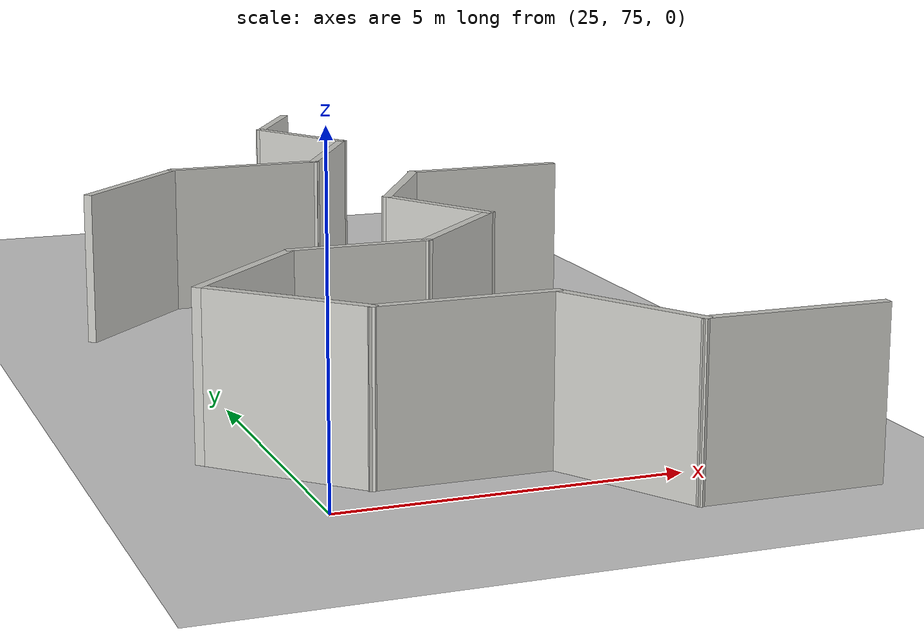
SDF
<sdf version="1.6">
 <world name="default">
  <model name="ground_plane">
   <pose>50 50 0 0 -0 0</pose>
   <static>1</static>
   <link name="link">
    <collision name="collision">
     <geometry><plane><normal>0 0 1</normal><size>100 100</size></plane></geometry>
     <surface><friction><ode><mu>100</mu><mu2>50</mu2></ode></friction></surface>
    </collision>
    <visual name="visual">
     <cast_shadows>0</cast_shadows>
     <geometry><plane><normal>0 0 1</normal><size>100 100</size></plane></geometry>
     <material>
      <script><uri>file://media/materials/scripts/gazebo.material</uri><name>Gazebo/Grey</name></script>
     </material>
    </visual>
   </link>
  </model>
  <model name="maze_1_0">
   <pose>55.5762 81.9377 0 0 -0 3.14</pose>
   <link name="Wall_151">
    <collision name="Wall_151_Collision">
     <geometry><box><size>2.75 0.15 2.5</size></box></geometry>
     <pose>0 0 1.25 0 -0 0</pose>
    </collision>
    <visual name="Wall_151_Visual">
     <pose>0 0 1.25 0 -0 0</pose>
     <geometry><box><size>2.75 0.15 2.5</size></box></geometry>
     <material>
      <script><uri>file://media/materials/scripts/gazebo.material</uri><name>Gazebo/CeilingTiled</name></script>
      <ambient>1 1 1 1</ambient>
     </material>
     <meta><layer>0</layer></meta>
    </visual>
    <pose>24.5383 -2.95315 0 0 -0 0</pose>
   </link>
   <link name="Wall_152">
    <collision name="Wall_152_Collision">
     <geometry><box><size>2.5 0.15 2.5</size></box></geometry>
     <pose>0 0 1.25 0 -0 0</pose>
    </collision>
    <visual name="Wall_152_Visual">
     <pose>0 0 1.25 0 -0 0</pose>
     <geometry><box><size>2.5 0.15 2.5</size></box></geometry>
     <material>
      <script><uri>file://media/materials/scripts/gazebo.material</uri><name>Gazebo/CeilingTiled</name></script>
      <ambient>1 1 1 1</ambient>
     </material>
     <meta><layer>0</layer></meta>
    </visual>
    <pose>26.4258 -1.93557 0 0 -0 1.0472</pose>
   </link>
   <link name="Wall_153">
    <collision name="Wall_153_Collision">
     <geometry><box><size>2.25 0.15 2.5</size></box></geometry>
     <pose>0 0 1.25 0 -0 0</pose>
    </collision>
    <visual name="Wall_153_Visual">
     <pose>0 0 1.25 0 -0 0</pose>
     <geometry><box><size>2.25 0.15 2.5</size></box></geometry>
     <material>
      <script><uri>file://media/materials/scripts/gazebo.material</uri><name>Gazebo/CeilingTiled</name></script>
      <ambient>1 1 1 1</ambient>
     </material>
     <meta><layer>0</layer></meta>
    </visual>
    <pose>26.4883 -0.00866 0 0 -0 2.0944</pose>
   </link>
   <link name="Wall_154">
    <collision name="Wall_154_Collision">
     <geometry><box><size>2.5 0.15 2.5</size></box></geometry>
     <pose>0 0 1.25 0 -0 0</pose>
    </collision>
    <visual name="Wall_154_Visual">
     <pose>0 0 1.25 0 -0 0</pose>
     <geometry><box><size>2.5 0.15 2.5</size></box></geometry>
     <material>
      <script><uri>file://media/materials/scripts/gazebo.material</uri><name>Gazebo/CeilingTiled</name></script>
      <ambient>1 1 1 1</ambient>
     </material>
     <meta><layer>0</layer></meta>
    </visual>
    <pose>26.7941 1.73152 0 0 -0 0.785398</pose>
   </link>
   <link name="Wall_155">
    <collision name="Wall_155_Collision">
     <geometry><box><size>2.25 0.15 2.5</size></box></geometry>
     <pose>0 0 1.25 0 -0 0</pose>
    </collision>
    <visual name="Wall_155_Visual">
     <pose>0 0 1.25 0 -0 0</pose>
     <geometry><box><size>2.25 0.15 2.5</size></box></geometry>
     <material>
      <script><uri>file://media/materials/scripts/gazebo.material</uri><name>Gazebo/CeilingTiled</name></script>
      <ambient>1 1 1 1</ambient>
     </material>
     <meta><layer>0</layer></meta>
    </visual>
    <pose>28.675 2.56237 0 0 -0 0</pose>
   </link>
   <link name="Wall_156">
    <collision name="Wall_156_Collision">
     <geometry><box><size>2.75 0.15 2.5</size></box></geometry>
     <pose>0 0 1.25 0 -0 0</pose>
    </collision>
    <visual name="Wall_156_Visual">
     <pose>0 0 1.25 0 -0 0</pose>
     <geometry><box><size>2.75 0.15 2.5</size></box></geometry>
     <material>
      <script><uri>file://media/materials/scripts/gazebo.material</uri><name>Gazebo/CeilingTiled</name></script>
      <ambient>1 1 1 1</ambient>
     </material>
     <meta><layer>0</layer></meta>
    </visual>
    <pose>30.6442 3.48161 0 0 -0 0.785398</pose>
   </link>
   <link name="Wall_157">
    <collision name="Wall_157_Collision">
     <geometry><box><size>2.75 0.15 2.5</size></box></geometry>
     <pose>0 0 1.25 0 -0 0</pose>
    </collision>
    <visual name="Wall_157_Visual">
     <pose>0 0 1.25 0 -0 0</pose>
     <geometry><box><size>2.75 0.15 2.5</size></box></geometry>
     <material>
      <script><uri>file://media/materials/scripts/gazebo.material</uri><name>Gazebo/CeilingTiled</name></script>
      <ambient>1 1 1 1</ambient>
     </material>
     <meta><layer>0</layer></meta>
    </visual>
    <pose>30.6442 5.32008 0 0 -0 2.35619</pose>
   </link>
   <link name="Wall_158">
    <collision name="Wall_158_Collision">
     <geometry><box><size>2.75 0.15 2.5</size></box></geometry>
     <pose>0 0 1.25 0 -0 0</pose>
    </collision>
    <visual name="Wall_158_Visual">
     <pose>0 0 1.25 0 -0 0</pose>
     <geometry><box><size>2.75 0.15 2.5</size></box></geometry>
     <material>
      <script><uri>file://media/materials/scripts/gazebo.material</uri><name>Gazebo/CeilingTiled</name></script>
      <ambient>1 1 1 1</ambient>
     </material>
     <meta><layer>0</layer></meta>
    </visual>
    <pose>28.425 6.23932 0 0 -0 3.14159</pose>
   </link>
   <link name="Wall_159">
    <collision name="Wall_159_Collision">
     <geometry><box><size>2.5 0.15 2.5</size></box></geometry>
     <pose>0 0 1.25 0 -0 0</pose>
    </collision>
    <visual name="Wall_159_Visual">
     <pose>0 0 1.25 0 -0 0</pose>
     <geometry><box><size>2.5 0.15 2.5</size></box></geometry>
     <material>
      <script><uri>file://media/materials/scripts/gazebo.material</uri><name>Gazebo/CeilingTiled</name></script>
      <ambient>1 1 1 1</ambient>
     </material>
     <meta><layer>0</layer></meta>
    </visual>
    <pose>26.5375 7.2569 0 0 -0 2.0944</pose>
   </link>
   <link name="Wall_160">
    <collision name="Wall_160_Collision">
     <geometry><box><size>2.75 0.15 2.5</size></box></geometry>
     <pose>0 0 1.25 0 -0 0</pose>
    </collision>
    <visual name="Wall_160_Visual">
     <pose>0 0 1.25 0 -0 0</pose>
     <geometry><box><size>2.75 0.15 2.5</size></box></geometry>
     <material>
      <script><uri>file://media/materials/scripts/gazebo.material</uri><name>Gazebo/CeilingTiled</name></script>
      <ambient>1 1 1 1</ambient>
     </material>
     <meta><layer>0</layer></meta>
    </visual>
    <pose>24.65 8.27448 0 0 -0 3.14159</pose>
   </link>
   <link name="Wall_190">
    <collision name="Wall_190_Collision">
     <geometry><box><size>2 0.15 2.5</size></box></geometry>
     <pose>0 0 1.25 0 -0 0</pose>
    </collision>
    <visual name="Wall_190_Visual">
     <pose>0 0 1.25 0 -0 0</pose>
     <geometry><box><size>2 0.15 2.5</size></box></geometry>
     <material>
      <script><uri>file://media/materials/scripts/gazebo.material</uri><name>Gazebo/CeilingTiled</name></script>
      <ambient>1 1 1 1</ambient>
     </material>
     <meta><layer>0</layer></meta>
    </visual>
    <pose>26.5572 -9.23801 0 0 -0 1.0472</pose>
   </link>
   <link name="Wall_191">
    <collision name="Wall_191_Collision">
     <geometry><box><size>2.25 0.15 2.5</size></box></geometry>
     <pose>0 0 1.25 0 -0 0</pose>
    </collision>
    <visual name="Wall_191_Visual">
     <pose>0 0 1.25 0 -0 0</pose>
     <geometry><box><size>2.25 0.15 2.5</size></box></geometry>
     <material>
      <script><uri>file://media/materials/scripts/gazebo.material</uri><name>Gazebo/CeilingTiled</name></script>
      <ambient>1 1 1 1</ambient>
     </material>
     <meta><layer>0</layer></meta>
    </visual>
    <pose>26.4947 -7.52761 0 0 -0 2.0944</pose>
   </link>
   <link name="Wall_192">
    <collision name="Wall_192_Collision">
     <geometry><box><size>2.5 0.15 2.5</size></box></geometry>
     <pose>0 0 1.25 0 -0 0</pose>
    </collision>
    <visual name="Wall_192_Visual">
     <pose>0 0 1.25 0 -0 0</pose>
     <geometry><box><size>2.5 0.15 2.5</size></box></geometry>
     <material>
      <script><uri>file://media/materials/scripts/gazebo.material</uri><name>Gazebo/CeilingTiled</name></script>
      <ambient>1 1 1 1</ambient>
     </material>
     <meta><layer>0</layer></meta>
    </visual>
    <pose>26.5572 -5.6007 0 0 -0 1.0472</pose>
   </link>
   <link name="Wall_193">
    <collision name="Wall_193_Collision">
     <geometry><box><size>2.75 0.15 2.5</size></box></geometry>
     <pose>0 0 1.25 0 -0 0</pose>
    </collision>
    <visual name="Wall_193_Visual">
     <pose>0 0 1.25 0 -0 0</pose>
     <geometry><box><size>2.75 0.15 2.5</size></box></geometry>
     <material>
      <script><uri>file://media/materials/scripts/gazebo.material</uri><name>Gazebo/CeilingTiled</name></script>
      <ambient>1 1 1 1</ambient>
     </material>
     <meta><layer>0</layer></meta>
    </visual>
    <pose>28.4447 -4.58312 0 0 -0 0</pose>
   </link>
   <link name="Wall_194">
    <collision name="Wall_194_Collision">
     <geometry><box><size>2.75 0.15 2.5</size></box></geometry>
     <pose>0 0 1.25 0 -0 0</pose>
    </collision>
    <visual name="Wall_194_Visual">
     <pose>0 0 1.25 0 -0 0</pose>
     <geometry><box><size>2.75 0.15 2.5</size></box></geometry>
     <material>
      <script><uri>file://media/materials/scripts/gazebo.material</uri><name>Gazebo/CeilingTiled</name></script>
      <ambient>1 1 1 1</ambient>
     </material>
     <meta><layer>0</layer></meta>
    </visual>
    <pose>30.664 -3.66389 0 0 -0 0.785398</pose>
   </link>
   <static>1</static>
  </model>
 </world>
</sdf>
